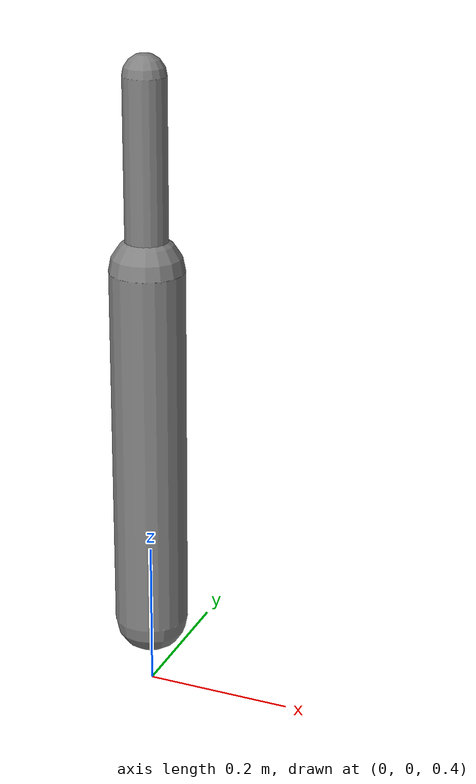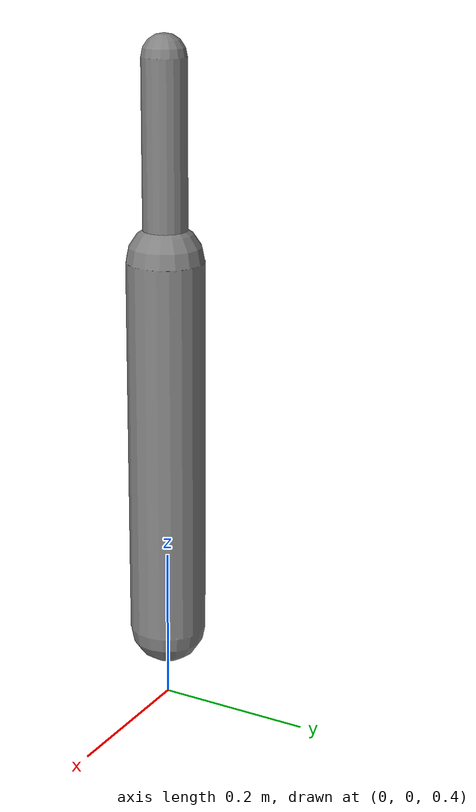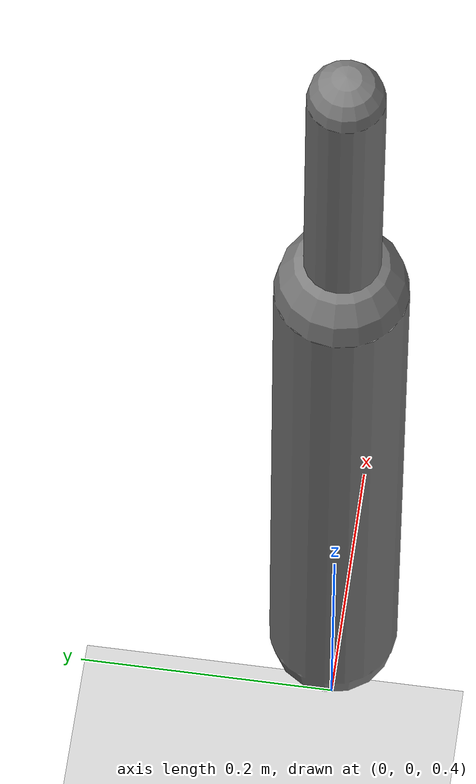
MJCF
<?xml version='1.0' encoding='UTF-8'?>
<mujoco model="RobotModel">
  <option gravity="0 0 -9.81" timestep="0.002" solver="CG" iterations="500" integrator="Euler"/>
  <worldbody>
    <geom name="Floor" type="plane" size="10 10 0.1" pos="0 0 0" rgba="0.8 0.8 0.8 1"/>
    <body name="Limb0" pos="0 0 0.5">
      <geom type="capsule" fromto="0 0 0 0 0 0.5" size="0.05" density="1000" contype="1" conaffinity="1"/>
      <body name="Limb0_0235adc9" pos="0 0 0.5">
        <geom type="capsule" fromto="0 0 0 0 0 0.25161342881532534" size="0.028469131528701622" density="800" contype="1" conaffinity="1"/>
        <joint name="Joint_Limb0_Limb0_0235adc9_0" type="hinge" axis="0 1 0" range="-60 60"/>
      </body>
    </body>
  </worldbody>
  <actuator>
    <position name="position_Actuator_Joint_Limb0_Limb0_0235adc9_0" joint="Joint_Limb0_Limb0_0235adc9_0" gear="1.0"/>
  </actuator>
</mujoco>
